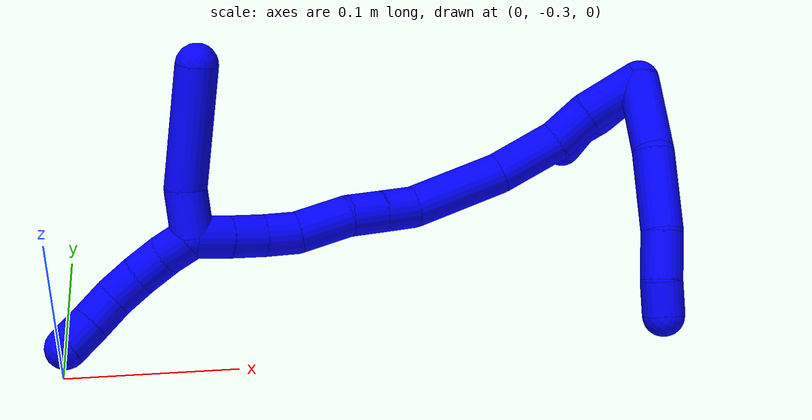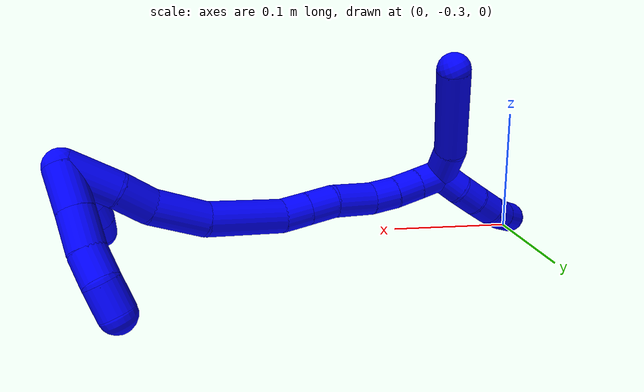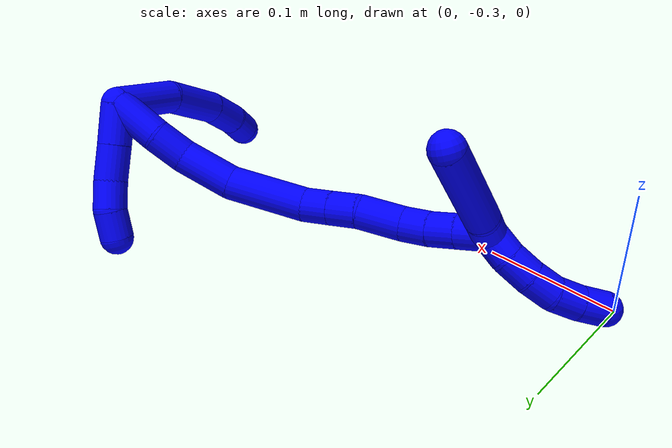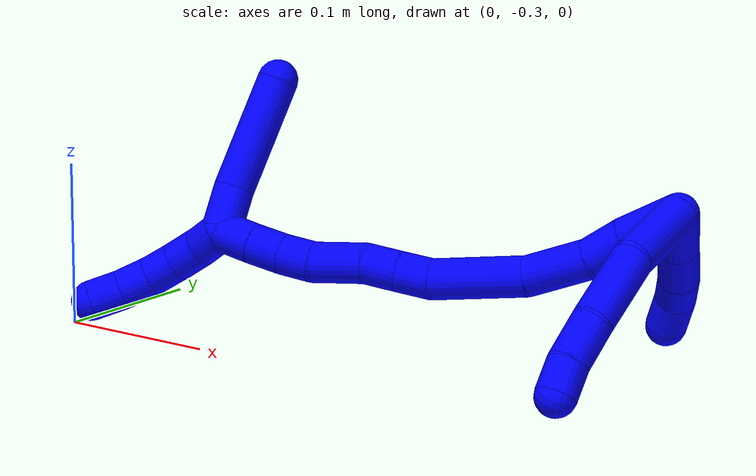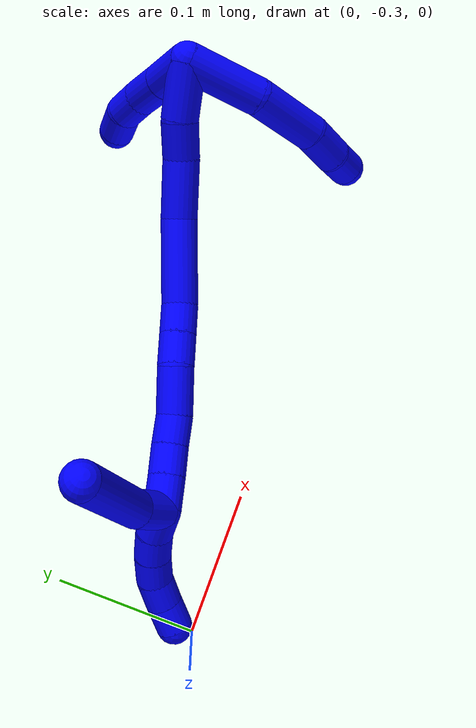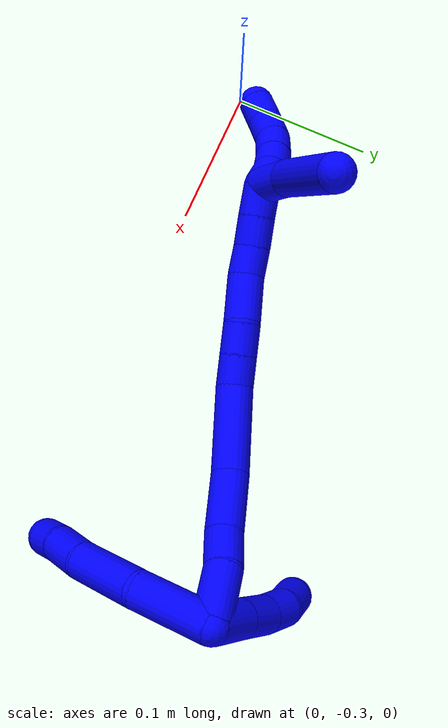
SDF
<sdf version="1.7">
 <world name="default">
  <model name="1">
   <static>0</static>
   <link name="1">
    <collision name="collision-cylinder-e_1_2_8">
     <pose>0.020681 -0.014697 -0.005507 1.92933 0.921614 1.24304</pose>
     <geometry><cylinder><radius>0.0125</radius><length>0.051925</length></cylinder></geometry>
     <surface>
      <friction><ode><mu>1.16</mu><mu2>1.16</mu2><slip1>0</slip1><slip2>0</slip2></ode></friction>
      <contact><ode><kp>1e+06</kp><kd>1</kd><max_vel>0</max_vel><min_depth>0.001</min_depth></ode></contact>
     </surface>
    </collision>
    <visual name="visual-cylinder-e_1_2_8">
     <pose>0.020681 -0.014697 -0.005507 1.92933 0.921614 1.24304</pose>
     <geometry><cylinder><radius>0.0125</radius><length>0.051925</length></cylinder></geometry>
     <material><ambient>0 0 1 1</ambient></material>
    </visual>
    <collision name="collision-cylinder-e_2_8_9">
     <pose>0.060529 -0.039724 -0.022154 2.39388 0.900605 1.77815</pose>
     <geometry><cylinder><radius>0.0125</radius><length>0.048915</length></cylinder></geometry>
     <surface>
      <friction><ode><mu>1.16</mu><mu2>1.16</mu2><slip1>0</slip1><slip2>0</slip2></ode></friction>
      <contact><ode><kp>1e+06</kp><kd>1</kd><max_vel>0</max_vel><min_depth>0.001</min_depth></ode></contact>
     </surface>
    </collision>
    <visual name="visual-cylinder-e_2_8_9">
     <pose>0.060529 -0.039724 -0.022154 2.39388 0.900605 1.77815</pose>
     <geometry><cylinder><radius>0.0125</radius><length>0.048915</length></cylinder></geometry>
     <material><ambient>0 0 1 1</ambient></material>
    </visual>
    <collision name="collision-cylinder-e_3_9_10">
     <pose>0.08962 -0.055337 -0.042104 2.60137 0.768077 1.94019</pose>
     <geometry><cylinder><radius>0.0125</radius><length>0.028568</length></cylinder></geometry>
     <surface>
      <friction><ode><mu>1.16</mu><mu2>1.16</mu2><slip1>0</slip1><slip2>0</slip2></ode></friction>
      <contact><ode><kp>1e+06</kp><kd>1</kd><max_vel>0</max_vel><min_depth>0.001</min_depth></ode></contact>
     </surface>
    </collision>
    <visual name="visual-cylinder-e_3_9_10">
     <pose>0.08962 -0.055337 -0.042104 2.60137 0.768077 1.94019</pose>
     <geometry><cylinder><radius>0.0125</radius><length>0.028568</length></cylinder></geometry>
     <material><ambient>0 0 1 1</ambient></material>
    </visual>
    <collision name="collision-cylinder-e_4_10_6">
     <pose>0.106956 -0.062803 -0.05772 2.8314 0.803631 2.43644</pose>
     <geometry><cylinder><radius>0.0125</radius><length>0.020593</length></cylinder></geometry>
     <surface>
      <friction><ode><mu>1.16</mu><mu2>1.16</mu2><slip1>0</slip1><slip2>0</slip2></ode></friction>
      <contact><ode><kp>1e+06</kp><kd>1</kd><max_vel>0</max_vel><min_depth>0.001</min_depth></ode></contact>
     </surface>
    </collision>
    <visual name="visual-cylinder-e_4_10_6">
     <pose>0.106956 -0.062803 -0.05772 2.8314 0.803631 2.43644</pose>
     <geometry><cylinder><radius>0.0125</radius><length>0.020593</length></cylinder></geometry>
     <material><ambient>0 0 1 1</ambient></material>
    </visual>
    <collision name="collision-cylinder-e_1_2_11">
     <pose>-0.004086 0.005247 -0.013679 -2.77533 -0.272016 1.27274</pose>
     <geometry><cylinder><radius>0.0125</radius><length>0.030419</length></cylinder></geometry>
     <surface>
      <friction><ode><mu>1.16</mu><mu2>1.16</mu2><slip1>0</slip1><slip2>0</slip2></ode></friction>
      <contact><ode><kp>1e+06</kp><kd>1</kd><max_vel>0</max_vel><min_depth>0.001</min_depth></ode></contact>
     </surface>
    </collision>
    <visual name="visual-cylinder-e_1_2_11">
     <pose>-0.004086 0.005247 -0.013679 -2.77533 -0.272016 1.27274</pose>
     <geometry><cylinder><radius>0.0125</radius><length>0.030419</length></cylinder></geometry>
     <material><ambient>0 0 1 1</ambient></material>
    </visual>
    <collision name="collision-cylinder-e_2_11_12">
     <pose>-0.011623 0.015399 -0.03935 -2.75333 -0.260258 1.17458</pose>
     <geometry><cylinder><radius>0.0125</radius><length>0.026818</length></cylinder></geometry>
     <surface>
      <friction><ode><mu>1.16</mu><mu2>1.16</mu2><slip1>0</slip1><slip2>0</slip2></ode></friction>
      <contact><ode><kp>1e+06</kp><kd>1</kd><max_vel>0</max_vel><min_depth>0.001</min_depth></ode></contact>
     </surface>
    </collision>
    <visual name="visual-cylinder-e_2_11_12">
     <pose>-0.011623 0.015399 -0.03935 -2.75333 -0.260258 1.17458</pose>
     <geometry><cylinder><radius>0.0125</radius><length>0.026818</length></cylinder></geometry>
     <material><ambient>0 0 1 1</ambient></material>
    </visual>
    <collision name="collision-cylinder-e_3_12_13">
     <pose>-0.018799 0.022992 -0.06093 -2.86825 -0.357988 1.84172</pose>
     <geometry><cylinder><radius>0.0125</radius><length>0.021259</length></cylinder></geometry>
     <surface>
      <friction><ode><mu>1.16</mu><mu2>1.16</mu2><slip1>0</slip1><slip2>0</slip2></ode></friction>
      <contact><ode><kp>1e+06</kp><kd>1</kd><max_vel>0</max_vel><min_depth>0.001</min_depth></ode></contact>
     </surface>
    </collision>
    <visual name="visual-cylinder-e_3_12_13">
     <pose>-0.018799 0.022992 -0.06093 -2.86825 -0.357988 1.84172</pose>
     <geometry><cylinder><radius>0.0125</radius><length>0.021259</length></cylinder></geometry>
     <material><ambient>0 0 1 1</ambient></material>
    </visual>
    <collision name="collision-cylinder-e_4_13_5">
     <pose>-0.023436 0.026579 -0.081191 -3.0575 -0.084994 1.58144</pose>
     <geometry><cylinder><radius>0.0125</radius><length>0.021503</length></cylinder></geometry>
     <surface>
      <friction><ode><mu>1.16</mu><mu2>1.16</mu2><slip1>0</slip1><slip2>0</slip2></ode></friction>
      <contact><ode><kp>1e+06</kp><kd>1</kd><max_vel>0</max_vel><min_depth>0.001</min_depth></ode></contact>
     </surface>
    </collision>
    <visual name="visual-cylinder-e_4_13_5">
     <pose>-0.023436 0.026579 -0.081191 -3.0575 -0.084994 1.58144</pose>
     <geometry><cylinder><radius>0.0125</radius><length>0.021503</length></cylinder></geometry>
     <material><ambient>0 0 1 1</ambient></material>
    </visual>
    <collision name="collision-cylinder-e_1_2_14">
     <pose>-0.004372 -0.010829 -0.014307 2.4937 -0.238981 -0.686801</pose>
     <geometry><cylinder><radius>0.0125</radius><length>0.036935</length></cylinder></geometry>
     <surface>
      <friction><ode><mu>1.16</mu><mu2>1.16</mu2><slip1>0</slip1><slip2>0</slip2></ode></friction>
      <contact><ode><kp>1e+06</kp><kd>1</kd><max_vel>0</max_vel><min_depth>0.001</min_depth></ode></contact>
     </surface>
    </collision>
    <visual name="visual-cylinder-e_1_2_14">
     <pose>-0.004372 -0.010829 -0.014307 2.4937 -0.238981 -0.686801</pose>
     <geometry><cylinder><radius>0.0125</radius><length>0.036935</length></cylinder></geometry>
     <material><ambient>0 0 1 1</ambient></material>
    </visual>
    <collision name="collision-cylinder-e_2_14_15">
     <pose>-0.009334 -0.029314 -0.038712 2.49282 -0.046587 -0.138346</pose>
     <geometry><cylinder><radius>0.0125</radius><length>0.025373</length></cylinder></geometry>
     <surface>
      <friction><ode><mu>1.16</mu><mu2>1.16</mu2><slip1>0</slip1><slip2>0</slip2></ode></friction>
      <contact><ode><kp>1e+06</kp><kd>1</kd><max_vel>0</max_vel><min_depth>0.001</min_depth></ode></contact>
     </surface>
    </collision>
    <visual name="visual-cylinder-e_2_14_15">
     <pose>-0.009334 -0.029314 -0.038712 2.49282 -0.046587 -0.138346</pose>
     <geometry><cylinder><radius>0.0125</radius><length>0.025373</length></cylinder></geometry>
     <material><ambient>0 0 1 1</ambient></material>
    </visual>
    <collision name="collision-cylinder-e_3_15_16">
     <pose>-0.014282 -0.051558 -0.062095 2.30953 -0.217341 -0.484183</pose>
     <geometry><cylinder><radius>0.0125</radius><length>0.040412</length></cylinder></geometry>
     <surface>
      <friction><ode><mu>1.16</mu><mu2>1.16</mu2><slip1>0</slip1><slip2>0</slip2></ode></friction>
      <contact><ode><kp>1e+06</kp><kd>1</kd><max_vel>0</max_vel><min_depth>0.001</min_depth></ode></contact>
     </surface>
    </collision>
    <visual name="visual-cylinder-e_3_15_16">
     <pose>-0.014282 -0.051558 -0.062095 2.30953 -0.217341 -0.484183</pose>
     <geometry><cylinder><radius>0.0125</radius><length>0.040412</length></cylinder></geometry>
     <material><ambient>0 0 1 1</ambient></material>
    </visual>
    <collision name="collision-cylinder-e_4_16_17">
     <pose>-0.026511 -0.091071 -0.088525 2.05608 -0.272411 -0.446849</pose>
     <geometry><cylinder><radius>0.0125</radius><length>0.058514</length></cylinder></geometry>
     <surface>
      <friction><ode><mu>1.16</mu><mu2>1.16</mu2><slip1>0</slip1><slip2>0</slip2></ode></friction>
      <contact><ode><kp>1e+06</kp><kd>1</kd><max_vel>0</max_vel><min_depth>0.001</min_depth></ode></contact>
     </surface>
    </collision>
    <visual name="visual-cylinder-e_4_16_17">
     <pose>-0.026511 -0.091071 -0.088525 2.05608 -0.272411 -0.446849</pose>
     <geometry><cylinder><radius>0.0125</radius><length>0.058514</length></cylinder></geometry>
     <material><ambient>0 0 1 1</ambient></material>
    </visual>
    <collision name="collision-cylinder-e_5_17_18">
     <pose>-0.038585 -0.125125 -0.10414 1.83516 -0.418152 -0.54091</pose>
     <geometry><cylinder><radius>0.0125</radius><length>0.0207</length></cylinder></geometry>
     <surface>
      <friction><ode><mu>1.16</mu><mu2>1.16</mu2><slip1>0</slip1><slip2>0</slip2></ode></friction>
      <contact><ode><kp>1e+06</kp><kd>1</kd><max_vel>0</max_vel><min_depth>0.001</min_depth></ode></contact>
     </surface>
    </collision>
    <visual name="visual-cylinder-e_5_17_18">
     <pose>-0.038585 -0.125125 -0.10414 1.83516 -0.418152 -0.54091</pose>
     <geometry><cylinder><radius>0.0125</radius><length>0.0207</length></cylinder></geometry>
     <material><ambient>0 0 1 1</ambient></material>
    </visual>
    <collision name="collision-cylinder-e_6_18_19">
     <pose>-0.047267 -0.143905 -0.10916 1.82893 -0.421839 -0.54225</pose>
     <geometry><cylinder><radius>0.0125</radius><length>0.021879</length></cylinder></geometry>
     <surface>
      <friction><ode><mu>1.16</mu><mu2>1.16</mu2><slip1>0</slip1><slip2>0</slip2></ode></friction>
      <contact><ode><kp>1e+06</kp><kd>1</kd><max_vel>0</max_vel><min_depth>0.001</min_depth></ode></contact>
     </surface>
    </collision>
    <visual name="visual-cylinder-e_6_18_19">
     <pose>-0.047267 -0.143905 -0.10916 1.82893 -0.421839 -0.54225</pose>
     <geometry><cylinder><radius>0.0125</radius><length>0.021879</length></cylinder></geometry>
     <material><ambient>0 0 1 1</ambient></material>
    </visual>
    <collision name="collision-cylinder-e_7_19_20">
     <pose>-0.056918 -0.167598 -0.118568 2.02523 -0.319558 -0.505147</pose>
     <geometry><cylinder><radius>0.0125</radius><length>0.032925</length></cylinder></geometry>
     <surface>
      <friction><ode><mu>1.16</mu><mu2>1.16</mu2><slip1>0</slip1><slip2>0</slip2></ode></friction>
      <contact><ode><kp>1e+06</kp><kd>1</kd><max_vel>0</max_vel><min_depth>0.001</min_depth></ode></contact>
     </surface>
    </collision>
    <visual name="visual-cylinder-e_7_19_20">
     <pose>-0.056918 -0.167598 -0.118568 2.02523 -0.319558 -0.505147</pose>
     <geometry><cylinder><radius>0.0125</radius><length>0.032925</length></cylinder></geometry>
     <material><ambient>0 0 1 1</ambient></material>
    </visual>
    <collision name="collision-cylinder-e_8_20_21">
     <pose>-0.066959 -0.190206 -0.128055 1.86837 -0.497816 -0.662306</pose>
     <geometry><cylinder><radius>0.0125</radius><length>0.020394</length></cylinder></geometry>
     <surface>
      <friction><ode><mu>1.16</mu><mu2>1.16</mu2><slip1>0</slip1><slip2>0</slip2></ode></friction>
      <contact><ode><kp>1e+06</kp><kd>1</kd><max_vel>0</max_vel><min_depth>0.001</min_depth></ode></contact>
     </surface>
    </collision>
    <visual name="visual-cylinder-e_8_20_21">
     <pose>-0.066959 -0.190206 -0.128055 1.86837 -0.497816 -0.662306</pose>
     <geometry><cylinder><radius>0.0125</radius><length>0.020394</length></cylinder></geometry>
     <material><ambient>0 0 1 1</ambient></material>
    </visual>
    <collision name="collision-cylinder-e_9_21_22">
     <pose>-0.076637 -0.207823 -0.132326 1.75051 -0.481706 -0.572373</pose>
     <geometry><cylinder><radius>0.0125</radius><length>0.020761</length></cylinder></geometry>
     <surface>
      <friction><ode><mu>1.16</mu><mu2>1.16</mu2><slip1>0</slip1><slip2>0</slip2></ode></friction>
      <contact><ode><kp>1e+06</kp><kd>1</kd><max_vel>0</max_vel><min_depth>0.001</min_depth></ode></contact>
     </surface>
    </collision>
    <visual name="visual-cylinder-e_9_21_22">
     <pose>-0.076637 -0.207823 -0.132326 1.75051 -0.481706 -0.572373</pose>
     <geometry><cylinder><radius>0.0125</radius><length>0.020761</length></cylinder></geometry>
     <material><ambient>0 0 1 1</ambient></material>
    </visual>
    <collision name="collision-cylinder-e_10_22_1">
     <pose>-0.086889 -0.226372 -0.135499 1.73032 -0.514846 -0.599397</pose>
     <geometry><cylinder><radius>0.0125</radius><length>0.022106</length></cylinder></geometry>
     <surface>
      <friction><ode><mu>1.16</mu><mu2>1.16</mu2><slip1>0</slip1><slip2>0</slip2></ode></friction>
      <contact><ode><kp>1e+06</kp><kd>1</kd><max_vel>0</max_vel><min_depth>0.001</min_depth></ode></contact>
     </surface>
    </collision>
    <visual name="visual-cylinder-e_10_22_1">
     <pose>-0.086889 -0.226372 -0.135499 1.73032 -0.514846 -0.599397</pose>
     <geometry><cylinder><radius>0.0125</radius><length>0.022106</length></cylinder></geometry>
     <material><ambient>0 0 1 1</ambient></material>
    </visual>
    <collision name="collision-cylinder-e_1_1_23">
     <pose>-0.095132 -0.239891 -0.145744 2.70937 -0.283864 -1.15398</pose>
     <geometry><cylinder><radius>0.0125</radius><length>0.02</length></cylinder></geometry>
     <surface>
      <friction><ode><mu>1.16</mu><mu2>1.16</mu2><slip1>0</slip1><slip2>0</slip2></ode></friction>
      <contact><ode><kp>1e+06</kp><kd>1</kd><max_vel>0</max_vel><min_depth>0.001</min_depth></ode></contact>
     </surface>
    </collision>
    <visual name="visual-cylinder-e_1_1_23">
     <pose>-0.095132 -0.239891 -0.145744 2.70937 -0.283864 -1.15398</pose>
     <geometry><cylinder><radius>0.0125</radius><length>0.02</length></cylinder></geometry>
     <material><ambient>0 0 1 1</ambient></material>
    </visual>
    <collision name="collision-cylinder-e_2_23_24">
     <pose>-0.09939 -0.249407 -0.162688 2.55275 -0.146264 -0.474126</pose>
     <geometry><cylinder><radius>0.0125</radius><length>0.02</length></cylinder></geometry>
     <surface>
      <friction><ode><mu>1.16</mu><mu2>1.16</mu2><slip1>0</slip1><slip2>0</slip2></ode></friction>
      <contact><ode><kp>1e+06</kp><kd>1</kd><max_vel>0</max_vel><min_depth>0.001</min_depth></ode></contact>
     </surface>
    </collision>
    <visual name="visual-cylinder-e_2_23_24">
     <pose>-0.09939 -0.249407 -0.162688 2.55275 -0.146264 -0.474126</pose>
     <geometry><cylinder><radius>0.0125</radius><length>0.02</length></cylinder></geometry>
     <material><ambient>0 0 1 1</ambient></material>
    </visual>
    <collision name="collision-cylinder-e_3_24_25">
     <pose>-0.101332 -0.261185 -0.17868 2.46128 -0.048422 -0.136634</pose>
     <geometry><cylinder><radius>0.0125</radius><length>0.02</length></cylinder></geometry>
     <surface>
      <friction><ode><mu>1.16</mu><mu2>1.16</mu2><slip1>0</slip1><slip2>0</slip2></ode></friction>
      <contact><ode><kp>1e+06</kp><kd>1</kd><max_vel>0</max_vel><min_depth>0.001</min_depth></ode></contact>
     </surface>
    </collision>
    <visual name="visual-cylinder-e_3_24_25">
     <pose>-0.101332 -0.261185 -0.17868 2.46128 -0.048422 -0.136634</pose>
     <geometry><cylinder><radius>0.0125</radius><length>0.02</length></cylinder></geometry>
     <material><ambient>0 0 1 1</ambient></material>
    </visual>
    <collision name="collision-cylinder-e_4_25_26">
     <pose>-0.100434 -0.275151 -0.192694 2.25372 0.138634 0.289911</pose>
     <geometry><cylinder><radius>0.0125</radius><length>0.02</length></cylinder></geometry>
     <surface>
      <friction><ode><mu>1.16</mu><mu2>1.16</mu2><slip1>0</slip1><slip2>0</slip2></ode></friction>
      <contact><ode><kp>1e+06</kp><kd>1</kd><max_vel>0</max_vel><min_depth>0.001</min_depth></ode></contact>
     </surface>
    </collision>
    <visual name="visual-cylinder-e_4_25_26">
     <pose>-0.100434 -0.275151 -0.192694 2.25372 0.138634 0.289911</pose>
     <geometry><cylinder><radius>0.0125</radius><length>0.02</length></cylinder></geometry>
     <material><ambient>0 0 1 1</ambient></material>
    </visual>
    <collision name="collision-cylinder-e_5_26_4">
     <pose>-0.097554 -0.2912 -0.204214 2.1329 0.150339 0.271212</pose>
     <geometry><cylinder><radius>0.0125</radius><length>0.02</length></cylinder></geometry>
     <surface>
      <friction><ode><mu>1.16</mu><mu2>1.16</mu2><slip1>0</slip1><slip2>0</slip2></ode></friction>
      <contact><ode><kp>1e+06</kp><kd>1</kd><max_vel>0</max_vel><min_depth>0.001</min_depth></ode></contact>
     </surface>
    </collision>
    <visual name="visual-cylinder-e_5_26_4">
     <pose>-0.097554 -0.2912 -0.204214 2.1329 0.150339 0.271212</pose>
     <geometry><cylinder><radius>0.0125</radius><length>0.02</length></cylinder></geometry>
     <material><ambient>0 0 1 1</ambient></material>
    </visual>
    <collision name="collision-cylinder-e_1_1_27">
     <pose>-0.102595 -0.234301 -0.127664 -0.166062 -0.82436 0.072742</pose>
     <geometry><cylinder><radius>0.0125</radius><length>0.027961</length></cylinder></geometry>
     <surface>
      <friction><ode><mu>1.16</mu><mu2>1.16</mu2><slip1>0</slip1><slip2>0</slip2></ode></friction>
      <contact><ode><kp>1e+06</kp><kd>1</kd><max_vel>0</max_vel><min_depth>0.001</min_depth></ode></contact>
     </surface>
    </collision>
    <visual name="visual-cylinder-e_1_1_27">
     <pose>-0.102595 -0.234301 -0.127664 -0.166062 -0.82436 0.072742</pose>
     <geometry><cylinder><radius>0.0125</radius><length>0.027961</length></cylinder></geometry>
     <material><ambient>0 0 1 1</ambient></material>
    </visual>
    <collision name="collision-cylinder-e_2_27_3">
     <pose>-0.131595 -0.226689 -0.088139 -0.197705 -0.547072 0.055637</pose>
     <geometry><cylinder><radius>0.0125</radius><length>0.072039</length></cylinder></geometry>
     <surface>
      <friction><ode><mu>1.16</mu><mu2>1.16</mu2><slip1>0</slip1><slip2>0</slip2></ode></friction>
      <contact><ode><kp>1e+06</kp><kd>1</kd><max_vel>0</max_vel><min_depth>0.001</min_depth></ode></contact>
     </surface>
    </collision>
    <visual name="visual-cylinder-e_2_27_3">
     <pose>-0.131595 -0.226689 -0.088139 -0.197705 -0.547072 0.055637</pose>
     <geometry><cylinder><radius>0.0125</radius><length>0.072039</length></cylinder></geometry>
     <material><ambient>0 0 1 1</ambient></material>
    </visual>
    <collision name="collision-sphere-3">
     <pose>-0.150332 -0.220647 -0.057975 0 -0 0</pose>
     <geometry><sphere><radius>0.0125</radius></sphere></geometry>
     <surface>
      <friction><ode><mu>1.16</mu><mu2>1.16</mu2><slip1>0</slip1><slip2>0</slip2></ode></friction>
      <contact><ode><kp>1e+06</kp><kd>1</kd><max_vel>0</max_vel><min_depth>0.001</min_depth></ode></contact>
     </surface>
    </collision>
    <visual name="visual-sphere-3">
     <pose>-0.150332 -0.220647 -0.057975 0 -0 0</pose>
     <geometry><sphere><radius>0.0125</radius></sphere></geometry>
     <material><ambient>0 0 1 1</ambient></material>
    </visual>
    <collision name="collision-sphere-27">
     <pose>-0.112858 -0.232732 -0.118302 0 -0 0</pose>
     <geometry><sphere><radius>0.0125</radius></sphere></geometry>
     <surface>
      <friction><ode><mu>1.16</mu><mu2>1.16</mu2><slip1>0</slip1><slip2>0</slip2></ode></friction>
      <contact><ode><kp>1e+06</kp><kd>1</kd><max_vel>0</max_vel><min_depth>0.001</min_depth></ode></contact>
     </surface>
    </collision>
    <visual name="visual-sphere-27">
     <pose>-0.112858 -0.232732 -0.118302 0 -0 0</pose>
     <geometry><sphere><radius>0.0125</radius></sphere></geometry>
     <material><ambient>0 0 1 1</ambient></material>
    </visual>
    <collision name="collision-sphere-4">
     <pose>-0.096056 -0.299566 -0.209484 0 -0 0</pose>
     <geometry><sphere><radius>0.0125</radius></sphere></geometry>
     <surface>
      <friction><ode><mu>1.16</mu><mu2>1.16</mu2><slip1>0</slip1><slip2>0</slip2></ode></friction>
      <contact><ode><kp>1e+06</kp><kd>1</kd><max_vel>0</max_vel><min_depth>0.001</min_depth></ode></contact>
     </surface>
    </collision>
    <visual name="visual-sphere-4">
     <pose>-0.096056 -0.299566 -0.209484 0 -0 0</pose>
     <geometry><sphere><radius>0.0125</radius></sphere></geometry>
     <material><ambient>0 0 1 1</ambient></material>
    </visual>
    <collision name="collision-sphere-26">
     <pose>-0.099052 -0.282834 -0.198945 0 -0 0</pose>
     <geometry><sphere><radius>0.0125</radius></sphere></geometry>
     <surface>
      <friction><ode><mu>1.16</mu><mu2>1.16</mu2><slip1>0</slip1><slip2>0</slip2></ode></friction>
      <contact><ode><kp>1e+06</kp><kd>1</kd><max_vel>0</max_vel><min_depth>0.001</min_depth></ode></contact>
     </surface>
    </collision>
    <visual name="visual-sphere-26">
     <pose>-0.099052 -0.282834 -0.198945 0 -0 0</pose>
     <geometry><sphere><radius>0.0125</radius></sphere></geometry>
     <material><ambient>0 0 1 1</ambient></material>
    </visual>
    <collision name="collision-sphere-25">
     <pose>-0.101816 -0.267468 -0.186444 0 -0 0</pose>
     <geometry><sphere><radius>0.0125</radius></sphere></geometry>
     <surface>
      <friction><ode><mu>1.16</mu><mu2>1.16</mu2><slip1>0</slip1><slip2>0</slip2></ode></friction>
      <contact><ode><kp>1e+06</kp><kd>1</kd><max_vel>0</max_vel><min_depth>0.001</min_depth></ode></contact>
     </surface>
    </collision>
    <visual name="visual-sphere-25">
     <pose>-0.101816 -0.267468 -0.186444 0 -0 0</pose>
     <geometry><sphere><radius>0.0125</radius></sphere></geometry>
     <material><ambient>0 0 1 1</ambient></material>
    </visual>
    <collision name="collision-sphere-24">
     <pose>-0.100848 -0.254902 -0.170915 0 -0 0</pose>
     <geometry><sphere><radius>0.0125</radius></sphere></geometry>
     <surface>
      <friction><ode><mu>1.16</mu><mu2>1.16</mu2><slip1>0</slip1><slip2>0</slip2></ode></friction>
      <contact><ode><kp>1e+06</kp><kd>1</kd><max_vel>0</max_vel><min_depth>0.001</min_depth></ode></contact>
     </surface>
    </collision>
    <visual name="visual-sphere-24">
     <pose>-0.100848 -0.254902 -0.170915 0 -0 0</pose>
     <geometry><sphere><radius>0.0125</radius></sphere></geometry>
     <material><ambient>0 0 1 1</ambient></material>
    </visual>
    <collision name="collision-sphere-23">
     <pose>-0.097933 -0.243913 -0.154461 0 -0 0</pose>
     <geometry><sphere><radius>0.0125</radius></sphere></geometry>
     <surface>
      <friction><ode><mu>1.16</mu><mu2>1.16</mu2><slip1>0</slip1><slip2>0</slip2></ode></friction>
      <contact><ode><kp>1e+06</kp><kd>1</kd><max_vel>0</max_vel><min_depth>0.001</min_depth></ode></contact>
     </surface>
    </collision>
    <visual name="visual-sphere-23">
     <pose>-0.097933 -0.243913 -0.154461 0 -0 0</pose>
     <geometry><sphere><radius>0.0125</radius></sphere></geometry>
     <material><ambient>0 0 1 1</ambient></material>
    </visual>
    <collision name="collision-sphere-1">
     <pose>-0.092331 -0.23587 -0.137027 0 -0 0</pose>
     <geometry><sphere><radius>0.0125</radius></sphere></geometry>
     <surface>
      <friction><ode><mu>1.16</mu><mu2>1.16</mu2><slip1>0</slip1><slip2>0</slip2></ode></friction>
      <contact><ode><kp>1e+06</kp><kd>1</kd><max_vel>0</max_vel><min_depth>0.001</min_depth></ode></contact>
     </surface>
    </collision>
    <visual name="visual-sphere-1">
     <pose>-0.092331 -0.23587 -0.137027 0 -0 0</pose>
     <geometry><sphere><radius>0.0125</radius></sphere></geometry>
     <material><ambient>0 0 1 1</ambient></material>
    </visual>
    <collision name="collision-sphere-22">
     <pose>-0.081446 -0.216874 -0.133971 0 -0 0</pose>
     <geometry><sphere><radius>0.0125</radius></sphere></geometry>
     <surface>
      <friction><ode><mu>1.16</mu><mu2>1.16</mu2><slip1>0</slip1><slip2>0</slip2></ode></friction>
      <contact><ode><kp>1e+06</kp><kd>1</kd><max_vel>0</max_vel><min_depth>0.001</min_depth></ode></contact>
     </surface>
    </collision>
    <visual name="visual-sphere-22">
     <pose>-0.081446 -0.216874 -0.133971 0 -0 0</pose>
     <geometry><sphere><radius>0.0125</radius></sphere></geometry>
     <material><ambient>0 0 1 1</ambient></material>
    </visual>
    <collision name="collision-sphere-21">
     <pose>-0.071828 -0.198772 -0.130682 0 -0 0</pose>
     <geometry><sphere><radius>0.0125</radius></sphere></geometry>
     <surface>
      <friction><ode><mu>1.16</mu><mu2>1.16</mu2><slip1>0</slip1><slip2>0</slip2></ode></friction>
      <contact><ode><kp>1e+06</kp><kd>1</kd><max_vel>0</max_vel><min_depth>0.001</min_depth></ode></contact>
     </surface>
    </collision>
    <visual name="visual-sphere-21">
     <pose>-0.071828 -0.198772 -0.130682 0 -0 0</pose>
     <geometry><sphere><radius>0.0125</radius></sphere></geometry>
     <material><ambient>0 0 1 1</ambient></material>
    </visual>
    <collision name="collision-sphere-11">
     <pose>-0.008173 0.010493 -0.027357 0 -0 0</pose>
     <geometry><sphere><radius>0.0125</radius></sphere></geometry>
     <surface>
      <friction><ode><mu>1.16</mu><mu2>1.16</mu2><slip1>0</slip1><slip2>0</slip2></ode></friction>
      <contact><ode><kp>1e+06</kp><kd>1</kd><max_vel>0</max_vel><min_depth>0.001</min_depth></ode></contact>
     </surface>
    </collision>
    <visual name="visual-sphere-11">
     <pose>-0.008173 0.010493 -0.027357 0 -0 0</pose>
     <geometry><sphere><radius>0.0125</radius></sphere></geometry>
     <material><ambient>0 0 1 1</ambient></material>
    </visual>
    <collision name="collision-sphere-6">
     <pose>0.114369 -0.064984 -0.064526 0 -0 0</pose>
     <geometry><sphere><radius>0.0125</radius></sphere></geometry>
     <surface>
      <friction><ode><mu>1.16</mu><mu2>1.16</mu2><slip1>0</slip1><slip2>0</slip2></ode></friction>
      <contact><ode><kp>1e+06</kp><kd>1</kd><max_vel>0</max_vel><min_depth>0.001</min_depth></ode></contact>
     </surface>
    </collision>
    <visual name="visual-sphere-6">
     <pose>0.114369 -0.064984 -0.064526 0 -0 0</pose>
     <geometry><sphere><radius>0.0125</radius></sphere></geometry>
     <material><ambient>0 0 1 1</ambient></material>
    </visual>
    <collision name="collision-sphere-10">
     <pose>0.099544 -0.060621 -0.050914 0 -0 0</pose>
     <geometry><sphere><radius>0.0125</radius></sphere></geometry>
     <surface>
      <friction><ode><mu>1.16</mu><mu2>1.16</mu2><slip1>0</slip1><slip2>0</slip2></ode></friction>
      <contact><ode><kp>1e+06</kp><kd>1</kd><max_vel>0</max_vel><min_depth>0.001</min_depth></ode></contact>
     </surface>
    </collision>
    <visual name="visual-sphere-10">
     <pose>0.099544 -0.060621 -0.050914 0 -0 0</pose>
     <geometry><sphere><radius>0.0125</radius></sphere></geometry>
     <material><ambient>0 0 1 1</ambient></material>
    </visual>
    <collision name="collision-sphere-9">
     <pose>0.079697 -0.050053 -0.033293 0 -0 0</pose>
     <geometry><sphere><radius>0.0125</radius></sphere></geometry>
     <surface>
      <friction><ode><mu>1.16</mu><mu2>1.16</mu2><slip1>0</slip1><slip2>0</slip2></ode></friction>
      <contact><ode><kp>1e+06</kp><kd>1</kd><max_vel>0</max_vel><min_depth>0.001</min_depth></ode></contact>
     </surface>
    </collision>
    <visual name="visual-sphere-9">
     <pose>0.079697 -0.050053 -0.033293 0 -0 0</pose>
     <geometry><sphere><radius>0.0125</radius></sphere></geometry>
     <material><ambient>0 0 1 1</ambient></material>
    </visual>
    <collision name="collision-sphere-2">
     <geometry><sphere><radius>0.0125</radius></sphere></geometry>
     <surface>
      <friction><ode><mu>1.16</mu><mu2>1.16</mu2><slip1>0</slip1><slip2>0</slip2></ode></friction>
      <contact><ode><kp>1e+06</kp><kd>1</kd><max_vel>0</max_vel><min_depth>0.001</min_depth></ode></contact>
     </surface>
    </collision>
    <visual name="visual-sphere-2">
     <geometry><sphere><radius>0.0125</radius></sphere></geometry>
     <material><ambient>0 0 1 1</ambient></material>
    </visual>
    <collision name="collision-sphere-19">
     <pose>-0.051746 -0.153555 -0.111707 0 -0 0</pose>
     <geometry><sphere><radius>0.0125</radius></sphere></geometry>
     <surface>
      <friction><ode><mu>1.16</mu><mu2>1.16</mu2><slip1>0</slip1><slip2>0</slip2></ode></friction>
      <contact><ode><kp>1e+06</kp><kd>1</kd><max_vel>0</max_vel><min_depth>0.001</min_depth></ode></contact>
     </surface>
    </collision>
    <visual name="visual-sphere-19">
     <pose>-0.051746 -0.153555 -0.111707 0 -0 0</pose>
     <geometry><sphere><radius>0.0125</radius></sphere></geometry>
     <material><ambient>0 0 1 1</ambient></material>
    </visual>
    <collision name="collision-sphere-8">
     <pose>0.041362 -0.029394 -0.011015 0 -0 0</pose>
     <geometry><sphere><radius>0.0125</radius></sphere></geometry>
     <surface>
      <friction><ode><mu>1.16</mu><mu2>1.16</mu2><slip1>0</slip1><slip2>0</slip2></ode></friction>
      <contact><ode><kp>1e+06</kp><kd>1</kd><max_vel>0</max_vel><min_depth>0.001</min_depth></ode></contact>
     </surface>
    </collision>
    <visual name="visual-sphere-8">
     <pose>0.041362 -0.029394 -0.011015 0 -0 0</pose>
     <geometry><sphere><radius>0.0125</radius></sphere></geometry>
     <material><ambient>0 0 1 1</ambient></material>
    </visual>
    <collision name="collision-sphere-12">
     <pose>-0.015074 0.020304 -0.051344 0 -0 0</pose>
     <geometry><sphere><radius>0.0125</radius></sphere></geometry>
     <surface>
      <friction><ode><mu>1.16</mu><mu2>1.16</mu2><slip1>0</slip1><slip2>0</slip2></ode></friction>
      <contact><ode><kp>1e+06</kp><kd>1</kd><max_vel>0</max_vel><min_depth>0.001</min_depth></ode></contact>
     </surface>
    </collision>
    <visual name="visual-sphere-12">
     <pose>-0.015074 0.020304 -0.051344 0 -0 0</pose>
     <geometry><sphere><radius>0.0125</radius></sphere></geometry>
     <material><ambient>0 0 1 1</ambient></material>
    </visual>
    <collision name="collision-sphere-13">
     <pose>-0.022523 0.025679 -0.070516 0 -0 0</pose>
     <geometry><sphere><radius>0.0125</radius></sphere></geometry>
     <surface>
      <friction><ode><mu>1.16</mu><mu2>1.16</mu2><slip1>0</slip1><slip2>0</slip2></ode></friction>
      <contact><ode><kp>1e+06</kp><kd>1</kd><max_vel>0</max_vel><min_depth>0.001</min_depth></ode></contact>
     </surface>
    </collision>
    <visual name="visual-sphere-13">
     <pose>-0.022523 0.025679 -0.070516 0 -0 0</pose>
     <geometry><sphere><radius>0.0125</radius></sphere></geometry>
     <material><ambient>0 0 1 1</ambient></material>
    </visual>
    <collision name="collision-sphere-5">
     <pose>-0.024349 0.027479 -0.091866 0 -0 0</pose>
     <geometry><sphere><radius>0.0125</radius></sphere></geometry>
     <surface>
      <friction><ode><mu>1.16</mu><mu2>1.16</mu2><slip1>0</slip1><slip2>0</slip2></ode></friction>
      <contact><ode><kp>1e+06</kp><kd>1</kd><max_vel>0</max_vel><min_depth>0.001</min_depth></ode></contact>
     </surface>
    </collision>
    <visual name="visual-sphere-5">
     <pose>-0.024349 0.027479 -0.091866 0 -0 0</pose>
     <geometry><sphere><radius>0.0125</radius></sphere></geometry>
     <material><ambient>0 0 1 1</ambient></material>
    </visual>
    <collision name="collision-sphere-14">
     <pose>-0.008743 -0.021657 -0.028614 0 -0 0</pose>
     <geometry><sphere><radius>0.0125</radius></sphere></geometry>
     <surface>
      <friction><ode><mu>1.16</mu><mu2>1.16</mu2><slip1>0</slip1><slip2>0</slip2></ode></friction>
      <contact><ode><kp>1e+06</kp><kd>1</kd><max_vel>0</max_vel><min_depth>0.001</min_depth></ode></contact>
     </surface>
    </collision>
    <visual name="visual-sphere-14">
     <pose>-0.008743 -0.021657 -0.028614 0 -0 0</pose>
     <geometry><sphere><radius>0.0125</radius></sphere></geometry>
     <material><ambient>0 0 1 1</ambient></material>
    </visual>
    <collision name="collision-sphere-15">
     <pose>-0.009925 -0.036971 -0.04881 0 -0 0</pose>
     <geometry><sphere><radius>0.0125</radius></sphere></geometry>
     <surface>
      <friction><ode><mu>1.16</mu><mu2>1.16</mu2><slip1>0</slip1><slip2>0</slip2></ode></friction>
      <contact><ode><kp>1e+06</kp><kd>1</kd><max_vel>0</max_vel><min_depth>0.001</min_depth></ode></contact>
     </surface>
    </collision>
    <visual name="visual-sphere-15">
     <pose>-0.009925 -0.036971 -0.04881 0 -0 0</pose>
     <geometry><sphere><radius>0.0125</radius></sphere></geometry>
     <material><ambient>0 0 1 1</ambient></material>
    </visual>
    <collision name="collision-sphere-16">
     <pose>-0.018639 -0.066146 -0.075381 0 -0 0</pose>
     <geometry><sphere><radius>0.0125</radius></sphere></geometry>
     <surface>
      <friction><ode><mu>1.16</mu><mu2>1.16</mu2><slip1>0</slip1><slip2>0</slip2></ode></friction>
      <contact><ode><kp>1e+06</kp><kd>1</kd><max_vel>0</max_vel><min_depth>0.001</min_depth></ode></contact>
     </surface>
    </collision>
    <visual name="visual-sphere-16">
     <pose>-0.018639 -0.066146 -0.075381 0 -0 0</pose>
     <geometry><sphere><radius>0.0125</radius></sphere></geometry>
     <material><ambient>0 0 1 1</ambient></material>
    </visual>
    <collision name="collision-sphere-17">
     <pose>-0.034382 -0.115995 -0.101669 0 -0 0</pose>
     <geometry><sphere><radius>0.0125</radius></sphere></geometry>
     <surface>
      <friction><ode><mu>1.16</mu><mu2>1.16</mu2><slip1>0</slip1><slip2>0</slip2></ode></friction>
      <contact><ode><kp>1e+06</kp><kd>1</kd><max_vel>0</max_vel><min_depth>0.001</min_depth></ode></contact>
     </surface>
    </collision>
    <visual name="visual-sphere-17">
     <pose>-0.034382 -0.115995 -0.101669 0 -0 0</pose>
     <geometry><sphere><radius>0.0125</radius></sphere></geometry>
     <material><ambient>0 0 1 1</ambient></material>
    </visual>
    <collision name="collision-sphere-18">
     <pose>-0.042788 -0.134255 -0.106612 0 -0 0</pose>
     <geometry><sphere><radius>0.0125</radius></sphere></geometry>
     <surface>
      <friction><ode><mu>1.16</mu><mu2>1.16</mu2><slip1>0</slip1><slip2>0</slip2></ode></friction>
      <contact><ode><kp>1e+06</kp><kd>1</kd><max_vel>0</max_vel><min_depth>0.001</min_depth></ode></contact>
     </surface>
    </collision>
    <visual name="visual-sphere-18">
     <pose>-0.042788 -0.134255 -0.106612 0 -0 0</pose>
     <geometry><sphere><radius>0.0125</radius></sphere></geometry>
     <material><ambient>0 0 1 1</ambient></material>
    </visual>
    <collision name="collision-sphere-20">
     <pose>-0.06209 -0.18164 -0.125428 0 -0 0</pose>
     <geometry><sphere><radius>0.0125</radius></sphere></geometry>
     <surface>
      <friction><ode><mu>1.16</mu><mu2>1.16</mu2><slip1>0</slip1><slip2>0</slip2></ode></friction>
      <contact><ode><kp>1e+06</kp><kd>1</kd><max_vel>0</max_vel><min_depth>0.001</min_depth></ode></contact>
     </surface>
    </collision>
    <visual name="visual-sphere-20">
     <pose>-0.06209 -0.18164 -0.125428 0 -0 0</pose>
     <geometry><sphere><radius>0.0125</radius></sphere></geometry>
     <material><ambient>0 0 1 1</ambient></material>
    </visual>
    <inertial>
     <pose>-0.034505 -0.114902 -0.0825 0 -0 0</pose>
     <mass>0.75</mass>
     <inertia><ixx>7.8e-05</ixx><ixy>0</ixy><ixz>0</ixz><iyy>1.7e-05</iyy><iyz>0</iyz><izz>3.6e-05</izz></inertia>
    </inertial>
   </link>
   <pose>0.35051 -0.166545 0.093463 -0.270087 0.346117 -0.874306</pose>
  </model>
 </world>
</sdf>
